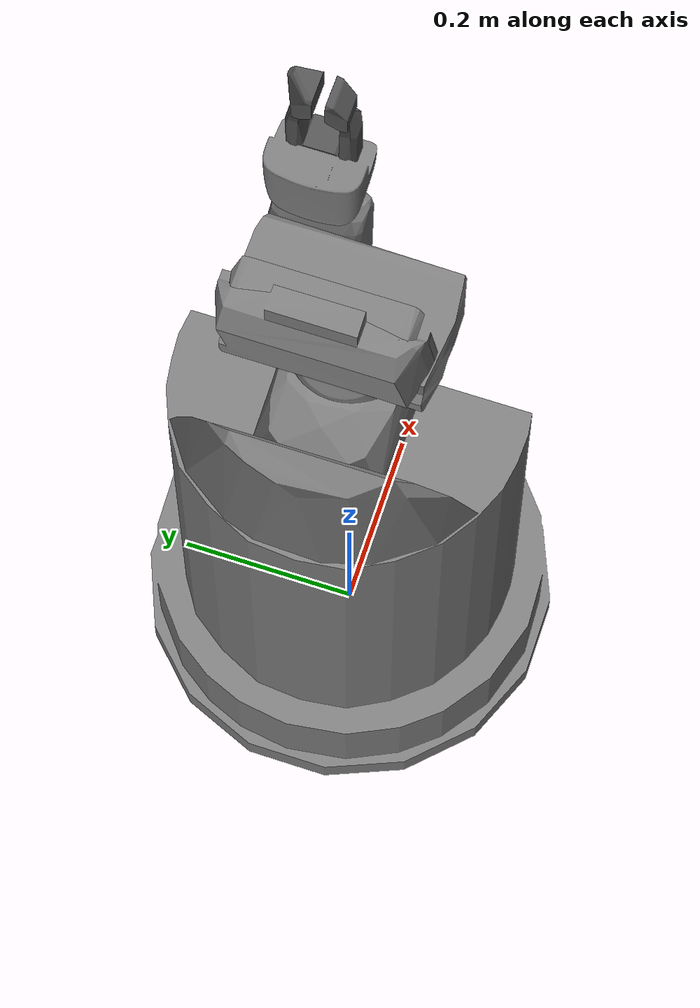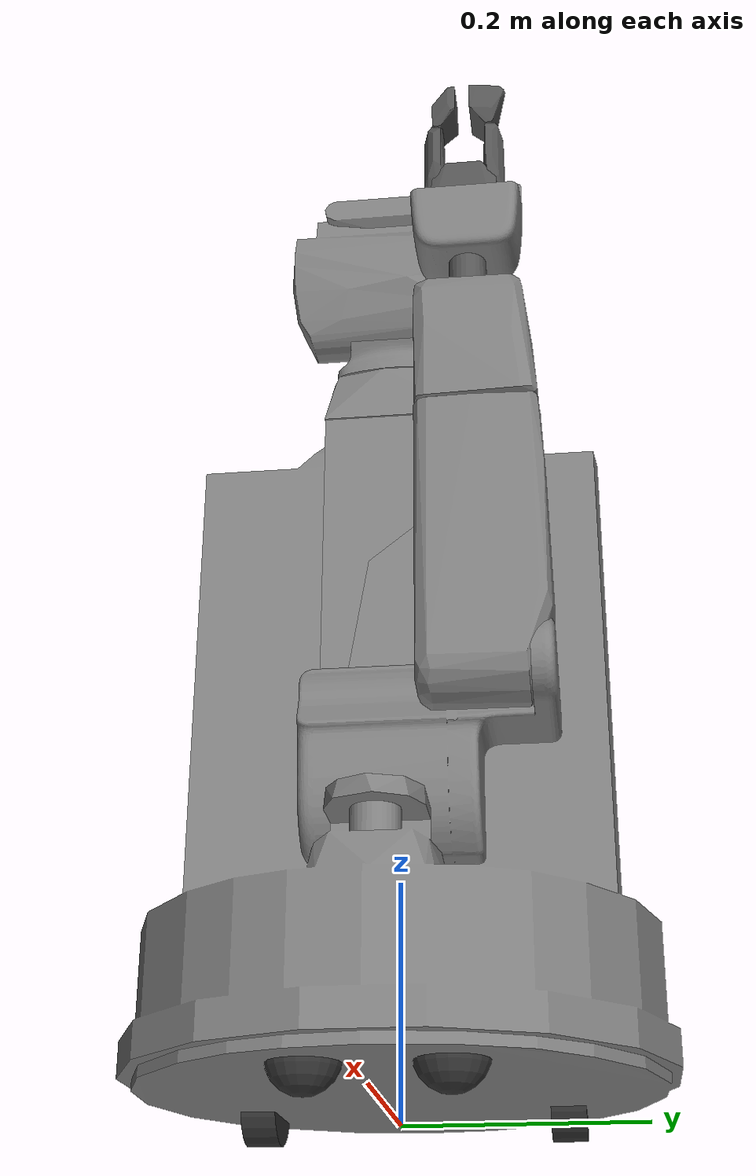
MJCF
<mujoco model="hsrb">
    <compiler angle="radian" meshdir="hsrb4s/stl/" />
    <default />
    <asset>
        <mesh name="base" file="base.stl" />
        <mesh name="laser" file="laser.stl" />
        <mesh name="torso" file="torso.stl" />
        <mesh name="head_pan" file="head_pan.stl" />
        <mesh name="head" file="head.stl" />
        <mesh name="tablet" file="tablet.stl" />
        <mesh name="rgbd" file="rgbd.stl" />
        <mesh name="shoulder" file="shoulder.stl" />
        <mesh name="arm_flex" file="arm_flex.stl" />
        <mesh name="arm_roll" file="arm_roll.stl" />
        <mesh name="wrist_roll" file="wrist_roll.stl" />
        <mesh name="palm" file="palm.stl" />
        <mesh name="l_proximal" file="l_proximal.stl" />
        <mesh name="l_distal" file="l_distal.stl" />
        <mesh name="r_proximal" file="r_proximal.stl" />
        <mesh name="r_distal" file="r_distal.stl" />
    </asset>
    <worldbody>
        <body name="hsrb4s">
            <freejoint />
            <geom type="mesh" mesh="base" />
            <geom pos="0.1675 0 0.1844" type="mesh" mesh="laser" />
            <body name="base_roll_link" pos="0 0 0">
                <inertial pos="-0.019482 0.002191 0.071013" quat="-0.163088 0.695987 0.176074 0.676759" mass="10.2394" diaginertia="0.145076 0.0958414 0.0713624" />
                <joint name="base_roll_joint" pos="0 0 0" axis="0 0 1" damping="0.7" />
                <body name="base_r_drive_wheel_link" pos="-0.11 -0.133 0.04">
                    <inertial pos="0 0 0" mass="0.2" diaginertia="0.015 0.015 0.015" />
                    <joint name="base_r_drive_wheel_joint" pos="0 0 0" axis="0 1 0" damping="1" />
                    <geom size="0.04 0.015" quat="0.707107 0.707107 0 0" type="cylinder" rgba="0.2 0.2 0.2 1" />
                </body>
                <body name="base_l_drive_wheel_link" pos="-0.11 0.133 0.04">
                    <inertial pos="0 0 0" mass="0.2" diaginertia="0.015 0.015 0.015" />
                    <joint name="base_l_drive_wheel_joint" pos="0 0 0" axis="0 1 0" damping="1" />
                    <geom size="0.04 0.015" quat="0.707107 0.707107 0 0" type="cylinder" rgba="0.2 0.2 0.2 1" />
                </body>
                <body name="base_r_passive_wheel_x_frame" pos="0.1495 -0.055 0.03">
                    <inertial pos="0 0 0" mass="0.2" diaginertia="0.015 0.015 0.015" />
                    <joint name="base_r_passive_wheel_x_frame_joint" pos="0 0 0" axis="1 0 0" damping="1" />
                    <body name="base_r_passive_wheel_y_frame" pos="0 0 0">
                        <inertial pos="0 0 0" mass="0.2" diaginertia="0.015 0.015 0.015" />
                        <joint name="base_r_passive_wheel_y_frame_joint" pos="0 0 0" axis="0 1 0" />
                        <body name="base_r_passive_wheel_z_link" pos="0 0 0">
                            <inertial pos="0 0 0" mass="0.2" diaginertia="0.015 0.015 0.015" />
                            <joint name="base_r_passive_wheel_z_joint" pos="0 0 0" axis="0 0 1" />
                            <geom size="0.03" rgba="0.2 0.2 0.2 1" />
                        </body>
                    </body>
                </body>
                <body name="base_l_passive_wheel_x_frame" pos="0.1495 0.055 0.03">
                    <inertial pos="0 0 0" mass="0.2" diaginertia="0.015 0.015 0.015" />
                    <joint name="base_l_passive_wheel_x_frame_joint" pos="0 0 0" axis="1 0 0" damping="1" />
                    <body name="base_l_passive_wheel_y_frame" pos="0 0 0">
                        <inertial pos="0 0 0" mass="0.2" diaginertia="0.015 0.015 0.015" />
                        <joint name="base_l_passive_wheel_y_frame_joint" pos="0 0 0" axis="0 1 0" />
                        <body name="base_l_passive_wheel_z_link" pos="0 0 0">
                            <inertial pos="0 0 0" mass="0.2" diaginertia="0.015 0.015 0.015" />
                            <joint name="base_l_passive_wheel_z_joint" pos="0 0 0" axis="0 0 1" />
                            <geom size="0.03" rgba="0.2 0.2 0.2 1" />
                        </body>
                    </body>
                </body>
            </body>
            <body name="torso_lift_link" pos="0 0 0.752">
                <inertial pos="-0.051142 0.003454 -0.2905" quat="0.511154 0.00760492 -0.0140194 0.859341" mass="3.42078" diaginertia="0.105342 0.104252 0.0127461" />
                <joint name="torso_lift_joint" pos="0 0 0" axis="0 0 1" type="slide" limited="true" range="0 0.345" damping="500" />
                <geom type="mesh" mesh="torso" />
                <body name="head_pan_link" pos="0 0 0">
                    <inertial pos="0.001724 -0.001969 -0.028886" quat="0.865343 0.459592 0.192259 -0.0547077" mass="0.571903" diaginertia="0.00102408 0.00077623 0.000589392" />
                    <joint name="head_pan_joint" pos="0 0 0" axis="0 0 1" limited="true" range="-3.84 1.75" damping="1" />
                    <geom type="mesh" mesh="head_pan" />
                    <body name="head_tilt_link" pos="0.02 0 0">
                        <inertial pos="-0.0585755 -0.00226398 0.125377" quat="0.974727 0.00825867 -0.223204 -0.00429581" mass="2.31102" diaginertia="0.0241287 0.016816 0.00963915" />
                        <joint name="head_tilt_joint" pos="0 0 0" axis="0 -1 0" limited="true" range="-1.57 0.52" damping="10" />
                        <geom type="mesh" mesh="head" />
                        <geom type="mesh" mesh="tablet" />
                        <geom pos="-0.079796 0.022 0.215172" quat="0.5 -0.5 0.5 -0.5" type="mesh" mesh="rgbd" />
                    </body>
                </body>
            </body>
            <body name="arm_lift_link" pos="0 0 0.34">
                <inertial pos="0.051549 0.042438 -0.064145" quat="-0.111496 0.499152 -0.110462 0.852182" mass="1.27582" diaginertia="0.00909548 0.00799354 0.00328099" />
                <joint name="arm_lift_joint" pos="0 0 0" axis="0 0 1" type="slide" limited="true" range="0 0.69" damping="1" />
                <geom type="mesh" mesh="shoulder" />
                <body name="arm_flex_link" pos="0.141 0.078 0">
                    <inertial pos="0.000632 0.006404 0.118529" quat="0.999966 -0.00826681 1.5355e-06 -1.33584e-06" mass="1.33929" diaginertia="2.51222 2.51222 2.51222" />
                    <joint name="arm_flex_joint" pos="0 0 0" axis="0 -1 0" limited="true" range="-2.62 0" damping="1" />
                    <geom type="mesh" mesh="arm_flex" />
                    <body name="arm_roll_link" pos="0.005 0 0.345">
                        <inertial pos="-0.006927 0.002039 -0.064837" quat="0.704471 0.707171 -0.0444888 0.0406182" mass="0.247936" diaginertia="0.00426928 0.00411787 0.00078077" />
                        <joint name="arm_roll_joint" pos="0 0 0" axis="0 0 1" limited="true" range="-2.09 3.84" damping="0.1" />
                        <geom type="mesh" mesh="arm_roll" />
                        <body name="wrist_flex_link" pos="0 0 0">
                            <inertial pos="0.000131 -0.003929 0.00217" quat="0.672298 0.740248 0.0055614 0.00418043" mass="0.681225" diaginertia="7.43604e-05 6.49274e-05 3.81796e-05" />
                            <joint name="wrist_flex_joint" pos="0 0 0" axis="0 -1 0" limited="true" range="-1.92 1.22" damping="1" />
                            <geom size="0.017 0.02" pos="0 0 0.03" type="cylinder" rgba="0.3333 0.3333 0.3333 1" />
                            <body name="wrist_roll_link" pos="0 0 0">
                                <inertial pos="0.000791324 -0.00129247 0.0913651" quat="0.966045 -0.00554233 0.0457183 -0.254238" mass="0.911692" diaginertia="0.016256 0.0162141 0.0154697" />
                                <joint name="wrist_roll_joint" pos="0 0 0" axis="0 0 1" limited="true" range="-1.92 3.67" damping="1" />
                                <geom type="mesh" mesh="wrist_roll" />
                                <geom pos="0.012 0 0.1405" quat="0 0 0 1" type="mesh" rgba="0.3333 0.3333 0.3333 1" mesh="palm" />
                                <body name="hand_motor_dummy_link" pos="0.012 0 0.1405" quat="0 0 0 1">
                                    <inertial pos="0 0 0" mass="0.15" diaginertia="0.015 0.015 0.015" />
                                    <joint name="hand_motor_joint" pos="0 0 0" axis="1 0 0" limited="true" range="-0.798 1.24" damping="1" />
                                </body>
                                <body name="hand_l_proximal_link" pos="0.02875 0.0245 0.123" quat="0 0 0 1">
                                    <inertial pos="0 0 0" mass="0.15" diaginertia="0.015 0.015 0.015" />
                                    <joint name="hand_l_proximal_joint" pos="0 0 0" axis="1 0 0" limited="true" range="-0.798 1.24" damping="1" />
                                    <body name="hand_l_spring_proximal_link" pos="0 0 0">
                                        <inertial pos="0.021418 0.00248 0.022688" quat="0.701927 0.0145759 0.051882 0.710208" mass="0.043589" diaginertia="2.88931e-05 2.62201e-05 4.88149e-06" />
                                        <joint name="hand_l_spring_proximal_joint" pos="0 0 0" axis="1 0 0" limited="true" range="0 0.698" damping="1" />
                                        <geom type="mesh" rgba="0.3333 0.3333 0.3333 1" mesh="l_proximal" />
                                        <body name="hand_l_mimic_distal_link" pos="0 0 0.07">
                                            <inertial pos="0 0 0" mass="0.15" diaginertia="0.015 0.015 0.015" />
                                            <joint name="hand_l_mimic_distal_joint" pos="0 0 0" axis="1 0 0" limited="true" range="-0.698 0" damping="1" />
                                            <body name="hand_l_distal_link" pos="0 0 0">
                                                <inertial pos="0.010781 0.00403268 0.0340346" quat="0.641751 0.74464 -0.133185 -0.126206" mass="0.327731" diaginertia="0.0300952 0.0300869 0.0300115" />
                                                <joint name="hand_l_distal_joint" pos="0 0 0" axis="1 0 0" limited="true" range="-1.24 0.798" damping="1" />
                                                <geom type="mesh" rgba="0.3333 0.3333 0.3333 1" mesh="l_distal" />
                                            </body>
                                        </body>
                                    </body>
                                </body>
                                <body name="hand_r_proximal_link" pos="0.02875 -0.0245 0.123" quat="0 0 0 1">
                                    <inertial pos="0 0 0" mass="0.15" diaginertia="0.015 0.015 0.015" />
                                    <joint name="hand_r_proximal_joint" pos="0 0 0" axis="-1 0 0" limited="true" range="-0.798 1.24" damping="1" />
                                    <body name="hand_r_spring_proximal_link" pos="0 0 0">
                                        <inertial pos="0.013203 0.002096 0.023311" quat="0.696227 -0.0447896 0.0033388 0.716415" mass="0.043956" diaginertia="2.89497e-05 2.63111e-05 4.7712e-06" />
                                        <joint name="hand_r_spring_proximal_joint" pos="0 0 0" axis="-1 0 0" limited="true" range="0 0.698" damping="1" />
                                        <geom type="mesh" rgba="0.3333 0.3333 0.3333 1" mesh="r_proximal" />
                                        <body name="hand_r_mimic_distal_link" pos="0 0 0.07">
                                            <inertial pos="0 0 0" mass="0.15" diaginertia="0.015 0.015 0.015" />
                                            <joint name="hand_r_mimic_distal_joint" pos="0 0 0" axis="-1 0 0" limited="true" range="-0.698 0" damping="1" />
                                            <body name="hand_r_distal_link" pos="0 0 0">
                                                <inertial pos="0.0164447 -0.0179558 0.0351687" quat="0.670492 0.190108 -0.131473 0.704992" mass="0.170927" diaginertia="0.015016 0.0150145 0.0150024" />
                                                <joint name="hand_r_distal_joint" pos="0 0 0" axis="-1 0 0" limited="true" range="-1.24 0.798" damping="1" />
                                                <geom type="mesh" rgba="0.3333 0.3333 0.3333 1" mesh="r_distal" />
                                            </body>
                                        </body>
                                    </body>
                                </body>
                            </body>
                        </body>
                    </body>
                </body>
            </body>
        </body>
    </worldbody>
    <equality>
        <joint joint1="hand_l_distal_joint" joint2="hand_motor_joint" polycoef="-0.087000 -1.000000  0 0 0" />
        <joint joint1="hand_l_mimic_distal_joint" joint2="hand_l_spring_proximal_joint" polycoef="0.000000 -1.000000  0 0 0" />
        <joint joint1="hand_l_proximal_joint" joint2="hand_motor_joint" polycoef="0.000000 1.000000  0 0 0" />
        <joint joint1="hand_r_distal_joint" joint2="hand_motor_joint" polycoef="-0.087000 -1.000000  0 0 0" />
        <joint joint1="hand_r_mimic_distal_joint" joint2="hand_r_spring_proximal_joint" polycoef="0.000000 -1.000000  0 0 0" />
        <joint joint1="hand_r_proximal_joint" joint2="hand_motor_joint" polycoef="0.000000 1.000000  0 0 0" />
        <joint joint1="torso_lift_joint" joint2="arm_lift_joint" polycoef="0.000000 0.500000  0 0 0" />
    </equality>
</mujoco>
